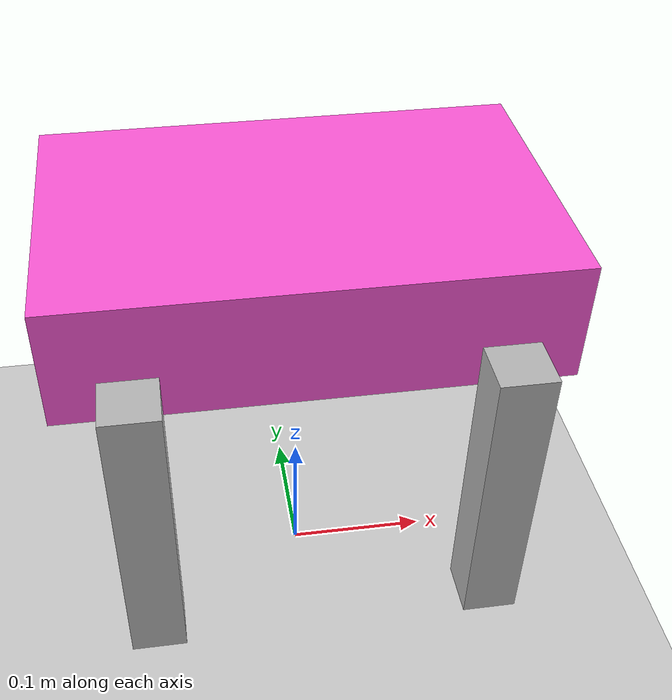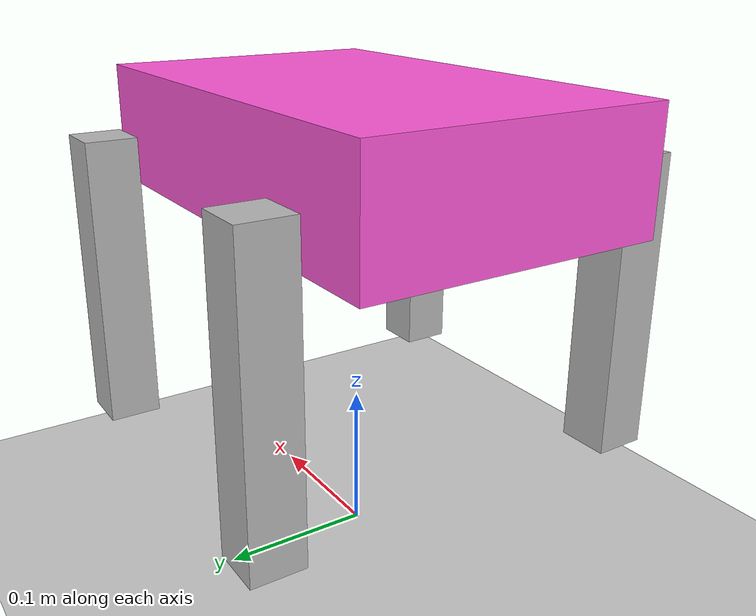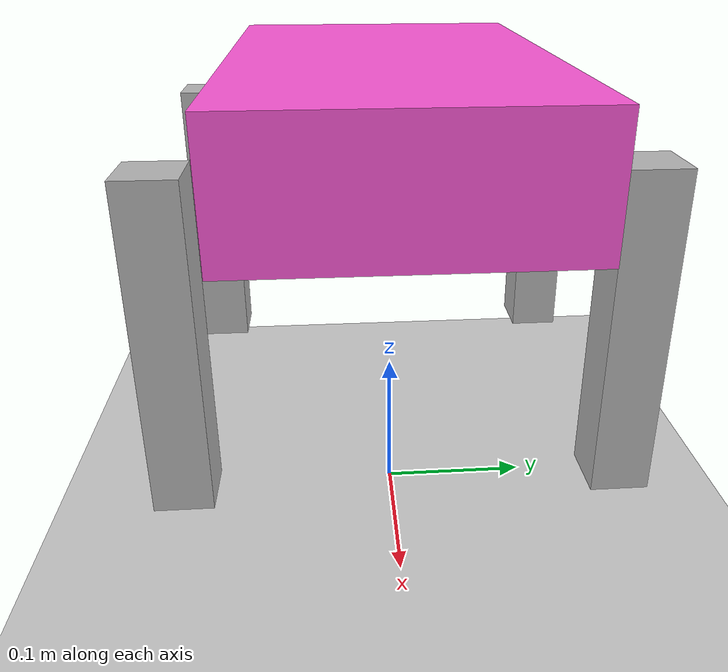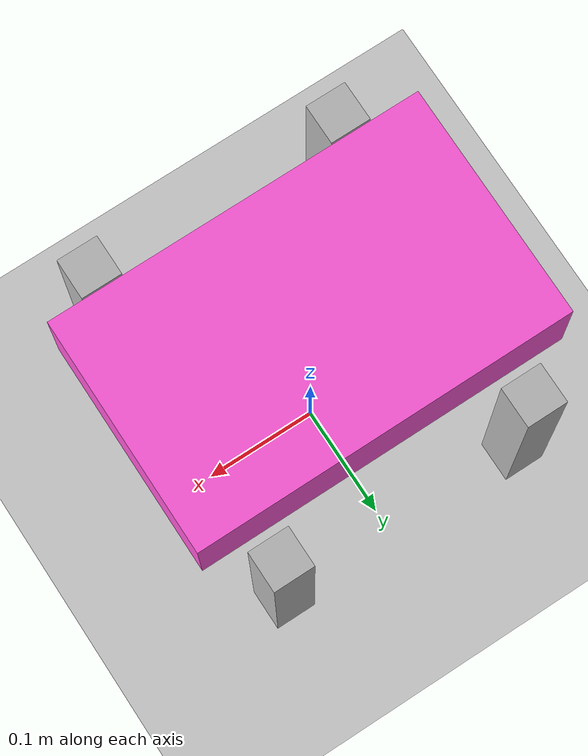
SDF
<?xml version="1.0"?>
<sdf version="1.6">
  <world name="default">
    <gravity>0 0 -9.8</gravity>

    <light name="sun" type="directional">
      <pose>0 0 10 0 0 0</pose>
      <diffuse>0.8 0.8 0.8 1</diffuse>
      <specular>0.2 0.2 0.2 1</specular>
      <direction>-0.5 0.1 -0.9</direction>
    </light>

    <model name="ground_plane">
      <static>true</static>
      <link name="link">
        <collision name="collision">
          <geometry>
            <plane>
              <normal>0 0 1</normal>
              <size>20 20</size>
            </plane>
          </geometry>
        </collision>
        <visual name="visual">
          <geometry>
            <plane>
              <normal>0 0 1</normal>
              <size>20 20</size>
            </plane>
          </geometry>
        </visual>
      </link>
    </model>

    <include>
      <uri>model://my_robot</uri>
    </include>
  </world>
</sdf>

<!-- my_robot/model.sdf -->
<sdf version="1.6">
  <model name="pluto_simple">
    <static>false</static>

    <link name="body">
      <pose>0 0 0.28 0 0 0</pose>

      <collision name="collision">
        <geometry>
          <box>
            <size>0.32 0.20 0.08</size>
          </box>
        </geometry>
      </collision>

      <visual name="visual">
        <material>
          <ambient>1.0 0.25 0.75 1</ambient>
          <diffuse>1.0 0.35 0.85 1</diffuse>
          <specular>0.3 0.3 0.3 1</specular>
        </material>
        <geometry>
          <box>
            <size>0.32 0.20 0.08</size>
          </box>
        </geometry>
      </visual>
    </link>

    <!-- TOP_LEFT -->
    <link name="top_left_leg">
      <pose>0.11 0.13 0.18 0 0 0</pose>
      <visual name="visual">
        <geometry><box><size>0.035 0.035 0.20</size></box></geometry>
      </visual>
      <collision name="collision">
        <geometry><box><size>0.035 0.035 0.20</size></box></geometry>
      </collision>
    </link>

    <joint name="top_left_hip" type="revolute">
      <parent>body</parent>
      <child>top_left_leg</child>
      <pose>0.11 0.10 0.25 0 0 0</pose>
      <axis>
        <xyz>0 1 0</xyz>
        <limit>
          <lower>-1.5</lower>
          <upper>1.5</upper>
        </limit>
      </axis>
    </joint>

    <!-- TOP_RIGHT -->
    <link name="top_right_leg">
      <pose>0.11 -0.13 0.18 0 0 0</pose>
      <visual name="visual">
        <geometry><box><size>0.035 0.035 0.20</size></box></geometry>
      </visual>
      <collision name="collision">
        <geometry><box><size>0.035 0.035 0.20</size></box></geometry>
      </collision>
    </link>

    <joint name="top_right_hip" type="revolute">
      <parent>body</parent>
      <child>top_right_leg</child>
      <pose>0.11 -0.10 0.25 0 0 0</pose>
      <axis>
        <xyz>0 1 0</xyz>
        <limit>
          <lower>-1.5</lower>
          <upper>1.5</upper>
        </limit>
      </axis>
    </joint>

    <!-- BOTTOM_LEFT -->
    <link name="bottom_left_leg">
      <pose>-0.11 0.13 0.18 0 0 0</pose>
      <visual name="visual">
        <geometry><box><size>0.035 0.035 0.20</size></box></geometry>
      </visual>
      <collision name="collision">
        <geometry><box><size>0.035 0.035 0.20</size></box></geometry>
      </collision>
    </link>

    <joint name="bottom_left_hip" type="revolute">
      <parent>body</parent>
      <child>bottom_left_leg</child>
      <pose>-0.11 0.10 0.25 0 0 0</pose>
      <axis>
        <xyz>0 1 0</xyz>
        <limit>
          <lower>-1.5</lower>
          <upper>1.5</upper>
        </limit>
      </axis>
    </joint>

    <!-- BOTTOM_RIGHT -->
    <link name="bottom_right_leg">
      <pose>-0.11 -0.13 0.18 0 0 0</pose>
      <visual name="visual">
        <geometry><box><size>0.035 0.035 0.20</size></box></geometry>
      </visual>
      <collision name="collision">
        <geometry><box><size>0.035 0.035 0.20</size></box></geometry>
      </collision>
    </link>

    <joint name="bottom_right_hip" type="revolute">
      <parent>body</parent>
      <child>bottom_right_leg</child>
      <pose>-0.11 -0.10 0.25 0 0 0</pose>
      <axis>
        <xyz>0 1 0</xyz>
        <limit>
          <lower>-1.5</lower>
          <upper>1.5</upper>
        </limit>
      </axis>
    </joint>

  <plugin
    filename="libpluto_gait_plugin.dylib"
    name="PlutoGaitPlugin"/>  </model>
</sdf>
